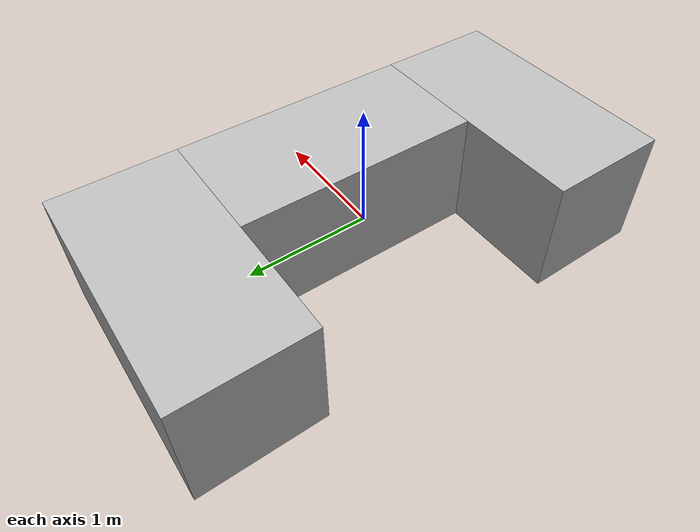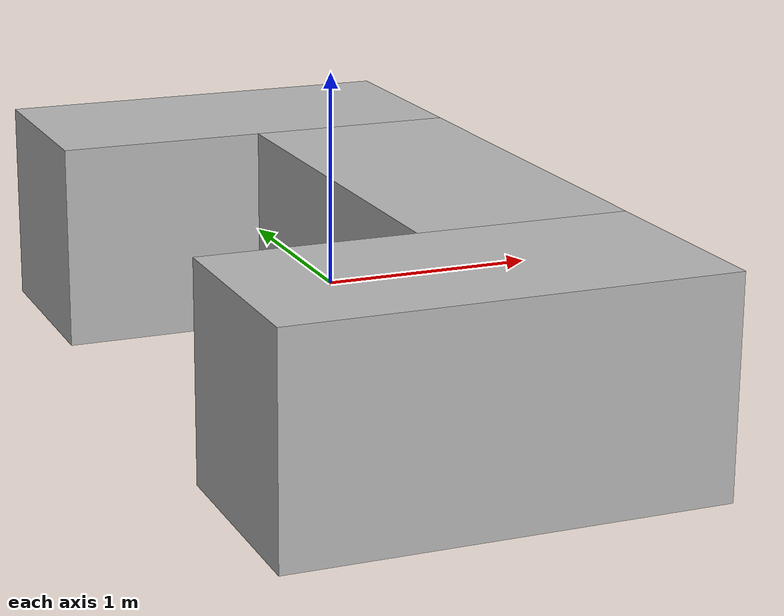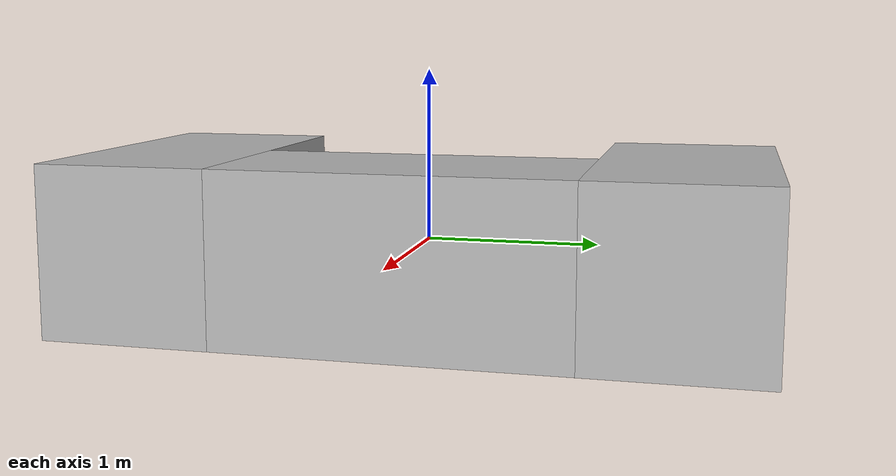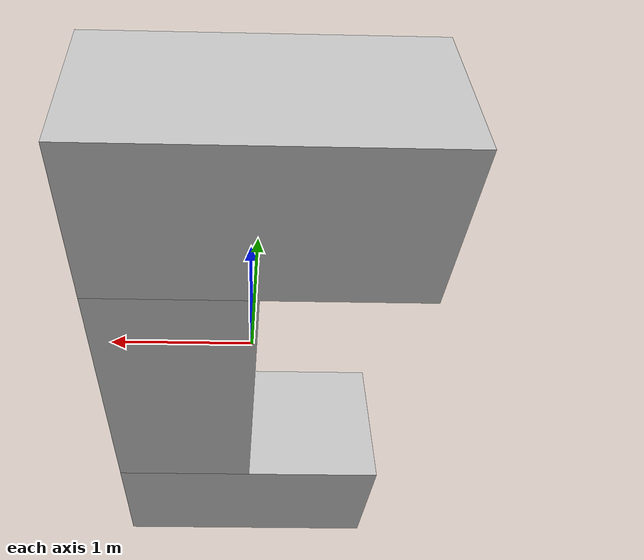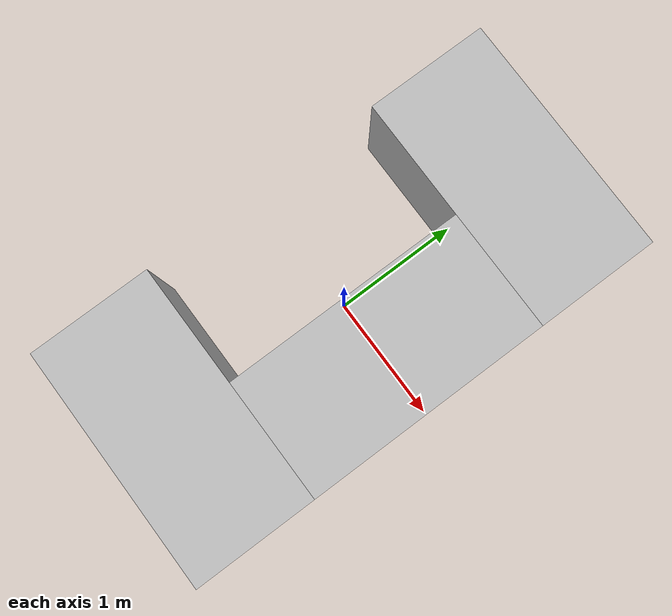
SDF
<?xml version='1.0' ?>
<sdf version='1.6'>
  <model name='room_w_lidar'>
    <static>true</static>
    <link name='left_wall'>
      <pose frame=''>0 1.5 0 0 0 0</pose>
      <visual name='wall'>
        <geometry>
          <box>
            <size>2 1 1</size>
          </box>
        </geometry>
      </visual>
      <collision name='wall'>
        <geometry>
          <box>
            <size>2 1 1</size>
          </box>
        </geometry>
      </collision>
    </link>
    <link name='front_wall'>
      <pose frame=''>0.5 0 0 0 0 0</pose>
      <visual name='wall'>
        <geometry>
          <box>
            <size>1 2 1</size>
          </box>
        </geometry>
      </visual>
      <collision name='wall'>
        <geometry>
          <box>
            <size>1 2 1</size>
          </box>
        </geometry>
      </collision>
    </link>
    <link name='right_wall'>
      <pose frame=''>0 -1.5 0 0 0 0</pose>
      <visual name='wall'>
        <geometry>
          <box>
            <size>2 1 1</size>
          </box>
        </geometry>
      </visual>
      <collision name='wall'>
        <geometry>
          <box>
            <size>2 1 1</size>
          </box>
        </geometry>
      </collision>
    </link>
    <link name='rear_wall'>
      <pose frame=''>-1 0 0 0 0 0</pose>
      <sensor name="lidar" type="ray">
        <always_on>1</always_on>
        <visualize>1</visualize>
        <update_rate>20.000000</update_rate>
        <ray>
          <scan>
            <horizontal>
              <samples>640</samples>
              <resolution>1.000000</resolution>
              <min_angle>-1.7</min_angle>
              <max_angle>1.7</max_angle>
            </horizontal>
          </scan>
          <range>
            <min>0.080000</min>
            <max>25.000000</max>
            <resolution>0.010000</resolution>
          </range>
        </ray>
      </sensor>
    </link>
  </model>
</sdf>
